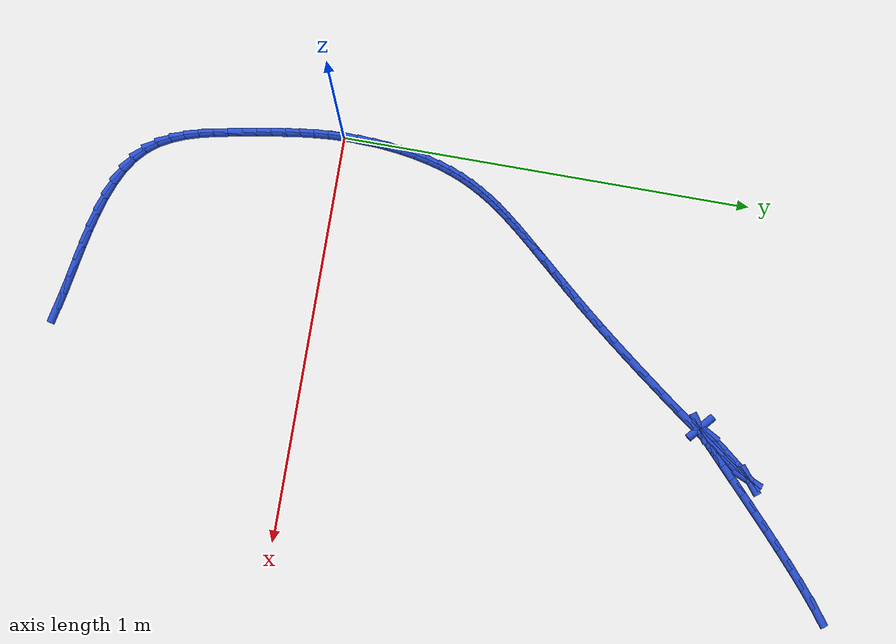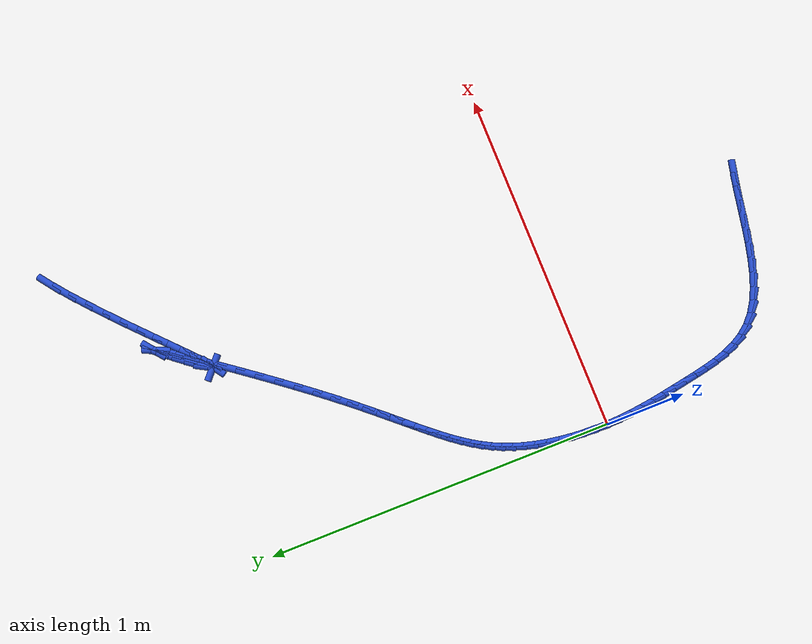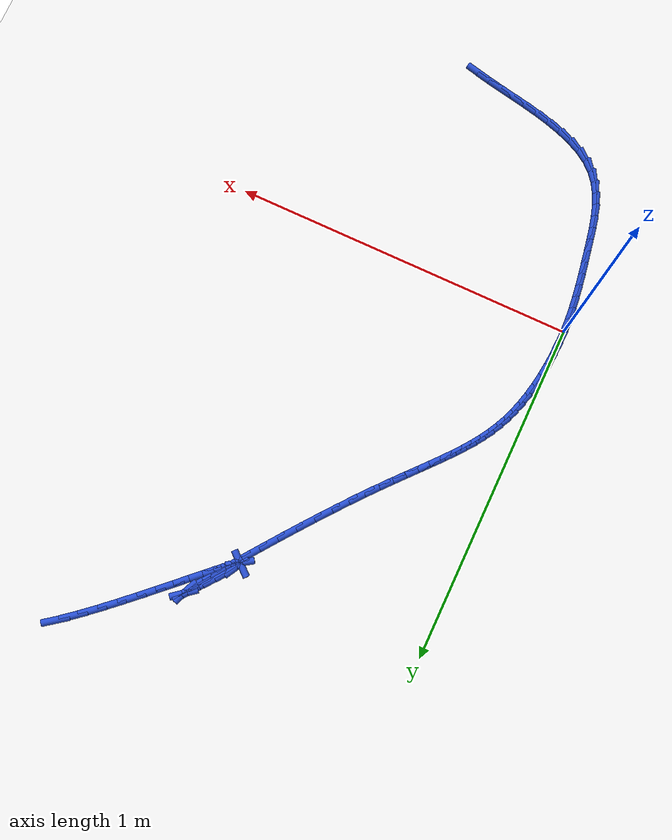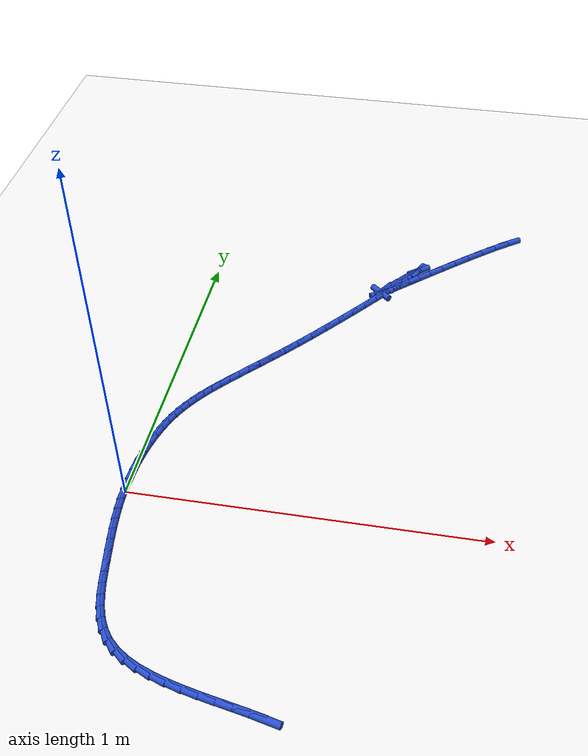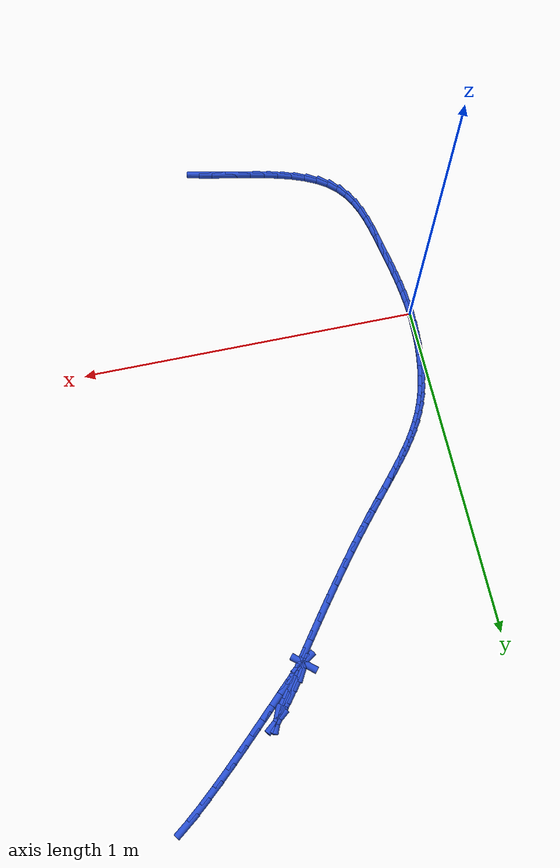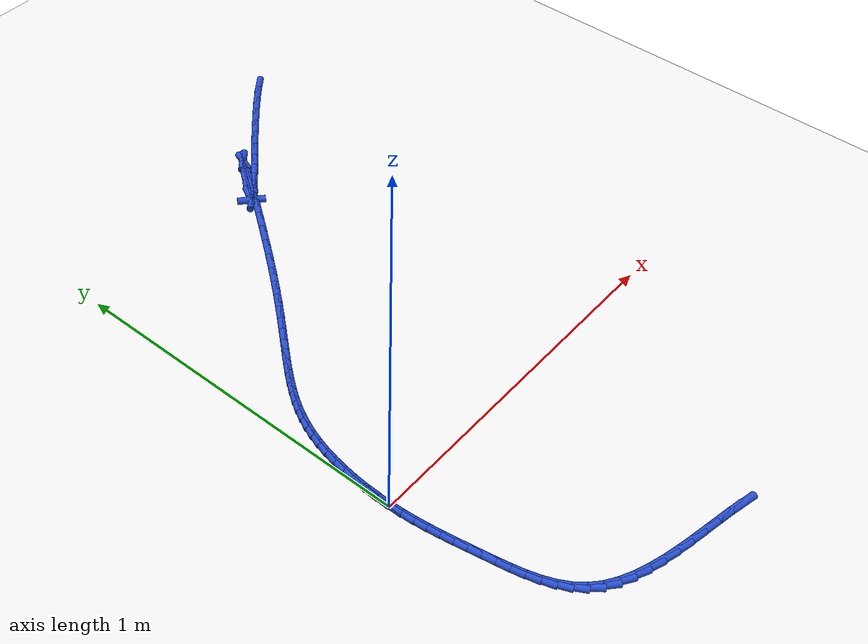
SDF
<sdf version="1.6">
 <world name="default">
  <model name="ground_plane">
   <static>1</static>
   <link name="link">
    <collision name="collision">
     <geometry><plane><normal>0 0 1</normal><size>100 100</size></plane></geometry>
     <surface><friction><ode><mu>100</mu><mu2>50</mu2></ode></friction></surface>
    </collision>
    <visual name="visual">
     <cast_shadows>0</cast_shadows>
     <geometry><plane><normal>0 0 1</normal><size>100 100</size></plane></geometry>
     <material>
      <script><uri>file://media/materials/scripts/gazebo.material</uri><name>Gazebo/WhiteGlow</name></script>
     </material>
    </visual>
   </link>
  </model>
  <model name="line">
   <link name="link_0">
    <pose>-3.469446951953614e-18 -2.0816681711721685e-17 0.01 0 1.57 -1.5707592864873938</pose>
    <collision name="collision">
     <geometry><cylinder><radius>0.01</radius><length>0.08</length></cylinder></geometry>
    </collision>
    <visual name="visual">
     <material>
      <script><name>Gazebo/Blue</name><uri>file://media/materials/scripts/gazebo.material</uri></script>
     </material>
     <geometry><cylinder><radius>0.01</radius><length>0.08</length></cylinder></geometry>
    </visual>
   </link>
   <link name="link_1">
    <pose>-1.321990990803127e-06 0.03569060516281446 0.01 0 1.57 1.5304173241686705</pose>
    <collision name="collision">
     <geometry><cylinder><radius>0.01</radius><length>0.08</length></cylinder></geometry>
    </collision>
    <visual name="visual">
     <material>
      <script><name>Gazebo/Blue</name><uri>file://media/materials/scripts/gazebo.material</uri></script>
     </material>
     <geometry><cylinder><radius>0.01</radius><length>0.08</length></cylinder></geometry>
    </visual>
   </link>
   <link name="link_2">
    <pose>0.0014527882783550929 0.07168257617487195 0.01 0 1.57 1.4906871543346432</pose>
    <collision name="collision">
     <geometry><cylinder><radius>0.01</radius><length>0.08</length></cylinder></geometry>
    </collision>
    <visual name="visual">
     <material>
      <script><name>Gazebo/Blue</name><uri>file://media/materials/scripts/gazebo.material</uri></script>
     </material>
     <geometry><cylinder><radius>0.01</radius><length>0.08</length></cylinder></geometry>
    </visual>
   </link>
   <link name="link_3">
    <pose>0.004335432446679731 0.1075895142138233 0.01 0 1.57 1.45047673911087</pose>
    <collision name="collision">
     <geometry><cylinder><radius>0.01</radius><length>0.08</length></cylinder></geometry>
    </collision>
    <visual name="visual">
     <material>
      <script><name>Gazebo/Blue</name><uri>file://media/materials/scripts/gazebo.material</uri></script>
     </material>
     <geometry><cylinder><radius>0.01</radius><length>0.08</length></cylinder></geometry>
    </visual>
   </link>
   <link name="link_4">
    <pose>0.008619712152625157 0.14302502045731946 0.01 0 1.57 1.4085735020318906</pose>
    <collision name="collision">
     <geometry><cylinder><radius>0.01</radius><length>0.08</length></cylinder></geometry>
    </collision>
    <visual name="visual">
     <material>
      <script><name>Gazebo/Blue</name><uri>file://media/materials/scripts/gazebo.material</uri></script>
     </material>
     <geometry><cylinder><radius>0.01</radius><length>0.08</length></cylinder></geometry>
    </visual>
   </link>
   <link name="link_5">
    <pose>0.014278729034833414 0.17760269608301127 0.01 0 1.57 1.3636078383511694</pose>
    <collision name="collision">
     <geometry><cylinder><radius>0.01</radius><length>0.08</length></cylinder></geometry>
    </collision>
    <visual name="visual">
     <material>
      <script><name>Gazebo/Blue</name><uri>file://media/materials/scripts/gazebo.material</uri></script>
     </material>
     <geometry><cylinder><radius>0.01</radius><length>0.08</length></cylinder></geometry>
    </visual>
   </link>
   <link name="link_6">
    <pose>0.02128558473194655 0.21093614226854962 0.01 0 1.57 1.3139166584926567</pose>
    <collision name="collision">
     <geometry><cylinder><radius>0.01</radius><length>0.08</length></cylinder></geometry>
    </collision>
    <visual name="visual">
     <material>
      <script><name>Gazebo/Blue</name><uri>file://media/materials/scripts/gazebo.material</uri></script>
     </material>
     <geometry><cylinder><radius>0.01</radius><length>0.08</length></cylinder></geometry>
    </visual>
   </link>
   <link name="link_7">
    <pose>0.029613380882606604 0.2426389601915854 0.01 0 1.57 1.2578349997189717</pose>
    <collision name="collision">
     <geometry><cylinder><radius>0.01</radius><length>0.08</length></cylinder></geometry>
    </collision>
    <visual name="visual">
     <material>
      <script><name>Gazebo/Blue</name><uri>file://media/materials/scripts/gazebo.material</uri></script>
     </material>
     <geometry><cylinder><radius>0.01</radius><length>0.08</length></cylinder></geometry>
    </visual>
   </link>
   <link name="link_8">
    <pose>0.03924030749667579 0.27238881024362055 0.01 0 1.57 1.1976031780181058</pose>
    <collision name="collision">
     <geometry><cylinder><radius>0.01</radius><length>0.08</length></cylinder></geometry>
    </collision>
    <visual name="visual">
     <material>
      <script><name>Gazebo/Blue</name><uri>file://media/materials/scripts/gazebo.material</uri></script>
     </material>
     <geometry><cylinder><radius>0.01</radius><length>0.08</length></cylinder></geometry>
    </visual>
   </link>
   <link name="link_9">
    <pose>0.05018192319062259 0.3003337987522592 0.01 0 1.57 1.1365635758216672</pose>
    <collision name="collision">
     <geometry><cylinder><radius>0.01</radius><length>0.08</length></cylinder></geometry>
    </collision>
    <visual name="visual">
     <material>
      <script><name>Gazebo/Blue</name><uri>file://media/materials/scripts/gazebo.material</uri></script>
     </material>
     <geometry><cylinder><radius>0.01</radius><length>0.08</length></cylinder></geometry>
    </visual>
   </link>
   <link name="link_10">
    <pose>0.06247044276273264 0.32683172231077307 0.01 0 1.57 1.077294029438978</pose>
    <collision name="collision">
     <geometry><cylinder><radius>0.01</radius><length>0.08</length></cylinder></geometry>
    </collision>
    <visual name="visual">
     <material>
      <script><name>Gazebo/Blue</name><uri>file://media/materials/scripts/gazebo.material</uri></script>
     </material>
     <geometry><cylinder><radius>0.01</radius><length>0.08</length></cylinder></geometry>
    </visual>
   </link>
   <link name="link_11">
    <pose>0.07613815761532017 0.35224134190627077 0.01 0 1.57 1.0223374243256331</pose>
    <collision name="collision">
     <geometry><cylinder><radius>0.01</radius><length>0.08</length></cylinder></geometry>
    </collision>
    <visual name="visual">
     <material>
      <script><name>Gazebo/Blue</name><uri>file://media/materials/scripts/gazebo.material</uri></script>
     </material>
     <geometry><cylinder><radius>0.01</radius><length>0.08</length></cylinder></geometry>
    </visual>
   </link>
   <link name="link_12">
    <pose>0.09121735915069937 0.37692141852586053 0.01 0 1.57 0.9738261884577403</pose>
    <collision name="collision">
     <geometry><cylinder><radius>0.01</radius><length>0.08</length></cylinder></geometry>
    </collision>
    <visual name="visual">
     <material>
      <script><name>Gazebo/Blue</name><uri>file://media/materials/scripts/gazebo.material</uri></script>
     </material>
     <geometry><cylinder><radius>0.01</radius><length>0.08</length></cylinder></geometry>
    </visual>
   </link>
   <link name="link_13">
    <pose>0.1077403387711844 0.4012307131566508 0.01 0 1.57 0.9332191299139411</pose>
    <collision name="collision">
     <geometry><cylinder><radius>0.01</radius><length>0.08</length></cylinder></geometry>
    </collision>
    <visual name="visual">
     <material>
      <script><name>Gazebo/Blue</name><uri>file://media/materials/scripts/gazebo.material</uri></script>
     </material>
     <geometry><cylinder><radius>0.01</radius><length>0.08</length></cylinder></geometry>
    </visual>
   </link>
   <link name="link_14">
    <pose>0.12573938787908945 0.42552798678575016 0.01 0 1.57 0.9012181013214329</pose>
    <collision name="collision">
     <geometry><cylinder><radius>0.01</radius><length>0.08</length></cylinder></geometry>
    </collision>
    <visual name="visual">
     <material>
      <script><name>Gazebo/Blue</name><uri>file://media/materials/scripts/gazebo.material</uri></script>
     </material>
     <geometry><cylinder><radius>0.01</radius><length>0.08</length></cylinder></geometry>
    </visual>
   </link>
   <link name="link_15">
    <pose>0.14524679787672864 0.45017200040026656 0.01 0 1.57 0.8778424733503216</pose>
    <collision name="collision">
     <geometry><cylinder><radius>0.01</radius><length>0.08</length></cylinder></geometry>
    </collision>
    <visual name="visual">
     <material>
      <script><name>Gazebo/Blue</name><uri>file://media/materials/scripts/gazebo.material</uri></script>
     </material>
     <geometry><cylinder><radius>0.01</radius><length>0.08</length></cylinder></geometry>
    </visual>
   </link>
   <link name="link_16">
    <pose>0.1662948601664163 0.4755215149873088 0.01 0 1.57 0.8625930361971438</pose>
    <collision name="collision">
     <geometry><cylinder><radius>0.01</radius><length>0.08</length></cylinder></geometry>
    </collision>
    <visual name="visual">
     <material>
      <script><name>Gazebo/Blue</name><uri>file://media/materials/scripts/gazebo.material</uri></script>
     </material>
     <geometry><cylinder><radius>0.01</radius><length>0.08</length></cylinder></geometry>
    </visual>
   </link>
   <link name="link_17">
    <pose>0.18891586615046652 0.5019352915339852 0.01 0 1.57 0.8546370481776571</pose>
    <collision name="collision">
     <geometry><cylinder><radius>0.01</radius><length>0.08</length></cylinder></geometry>
    </collision>
    <visual name="visual">
     <material>
      <script><name>Gazebo/Blue</name><uri>file://media/materials/scripts/gazebo.material</uri></script>
     </material>
     <geometry><cylinder><radius>0.01</radius><length>0.08</length></cylinder></geometry>
    </visual>
   </link>
   <link name="link_18">
    <pose>0.2131421072311935 0.529772091027404 0.01 0 1.57 0.8529709879256517</pose>
    <collision name="collision">
     <geometry><cylinder><radius>0.01</radius><length>0.08</length></cylinder></geometry>
    </collision>
    <visual name="visual">
     <material>
      <script><name>Gazebo/Blue</name><uri>file://media/materials/scripts/gazebo.material</uri></script>
     </material>
     <geometry><cylinder><radius>0.01</radius><length>0.08</length></cylinder></geometry>
    </visual>
   </link>
   <link name="link_19">
    <pose>0.23900587481091135 0.5593906744546736 0.01 0 1.57 0.8565436841870587</pose>
    <collision name="collision">
     <geometry><cylinder><radius>0.01</radius><length>0.08</length></cylinder></geometry>
    </collision>
    <visual name="visual">
     <material>
      <script><name>Gazebo/Blue</name><uri>file://media/materials/scripts/gazebo.material</uri></script>
     </material>
     <geometry><cylinder><radius>0.01</radius><length>0.08</length></cylinder></geometry>
    </visual>
   </link>
   <link name="link_20">
    <pose>0.26653946029193437 0.5911498028029026 0.01 0 1.57 0.8643393472643787</pose>
    <collision name="collision">
     <geometry><cylinder><radius>0.01</radius><length>0.08</length></cylinder></geometry>
    </collision>
    <visual name="visual">
     <material>
      <script><name>Gazebo/Blue</name><uri>file://media/materials/scripts/gazebo.material</uri></script>
     </material>
     <geometry><cylinder><radius>0.01</radius><length>0.08</length></cylinder></geometry>
    </visual>
   </link>
   <link name="link_21">
    <pose>0.2957751550765767 0.6254082370591991 0.01 0 1.57 0.87542749178564</pose>
    <collision name="collision">
     <geometry><cylinder><radius>0.01</radius><length>0.08</length></cylinder></geometry>
    </collision>
    <visual name="visual">
     <material>
      <script><name>Gazebo/Blue</name><uri>file://media/materials/scripts/gazebo.material</uri></script>
     </material>
     <geometry><cylinder><radius>0.01</radius><length>0.08</length></cylinder></geometry>
    </visual>
   </link>
   <link name="link_22">
    <pose>0.3267452505671524 0.6625247382106717 0.01 0 1.57 0.8888215452859668</pose>
    <collision name="collision">
     <geometry><cylinder><radius>0.01</radius><length>0.08</length></cylinder></geometry>
    </collision>
    <visual name="visual">
     <material>
      <script><name>Gazebo/Blue</name><uri>file://media/materials/scripts/gazebo.material</uri></script>
     </material>
     <geometry><cylinder><radius>0.01</radius><length>0.08</length></cylinder></geometry>
    </visual>
   </link>
   <link name="link_23">
    <pose>0.3594605537952452 0.7028178570839259 0.01 0 1.57 0.9013056689274274</pose>
    <collision name="collision">
     <geometry><cylinder><radius>0.01</radius><length>0.08</length></cylinder></geometry>
    </collision>
    <visual name="visual">
     <material>
      <script><name>Gazebo/Blue</name><uri>file://media/materials/scripts/gazebo.material</uri></script>
     </material>
     <geometry><cylinder><radius>0.01</radius><length>0.08</length></cylinder></geometry>
    </visual>
   </link>
   <link name="link_24">
    <pose>0.39354983607669625 0.7458911262422728 0.01 0 1.57 0.9113345819190084</pose>
    <collision name="collision">
     <geometry><cylinder><radius>0.01</radius><length>0.08</length></cylinder></geometry>
    </collision>
    <visual name="visual">
     <material>
      <script><name>Gazebo/Blue</name><uri>file://media/materials/scripts/gazebo.material</uri></script>
     </material>
     <geometry><cylinder><radius>0.01</radius><length>0.08</length></cylinder></geometry>
    </visual>
   </link>
   <link name="link_25">
    <pose>0.42831335326093006 0.7907332285148665 0.01 0 1.57 0.9197195872085189</pose>
    <collision name="collision">
     <geometry><cylinder><radius>0.01</radius><length>0.08</length></cylinder></geometry>
    </collision>
    <visual name="visual">
     <material>
      <script><name>Gazebo/Blue</name><uri>file://media/materials/scripts/gazebo.material</uri></script>
     </material>
     <geometry><cylinder><radius>0.01</radius><length>0.08</length></cylinder></geometry>
    </visual>
   </link>
   <link name="link_26">
    <pose>0.463040657372221 0.8363128134456101 0.01 0 1.57 0.9270641181634669</pose>
    <collision name="collision">
     <geometry><cylinder><radius>0.01</radius><length>0.08</length></cylinder></geometry>
    </collision>
    <visual name="visual">
     <material>
      <script><name>Gazebo/Blue</name><uri>file://media/materials/scripts/gazebo.material</uri></script>
     </material>
     <geometry><cylinder><radius>0.01</radius><length>0.08</length></cylinder></geometry>
    </visual>
   </link>
   <link name="link_27">
    <pose>0.49702130043484294 0.8815985305784064 0.01 0 1.57 0.9338323528605587</pose>
    <collision name="collision">
     <geometry><cylinder><radius>0.01</radius><length>0.08</length></cylinder></geometry>
    </collision>
    <visual name="visual">
     <material>
      <script><name>Gazebo/Blue</name><uri>file://media/materials/scripts/gazebo.material</uri></script>
     </material>
     <geometry><cylinder><radius>0.01</radius><length>0.08</length></cylinder></geometry>
    </visual>
   </link>
   <link name="link_28">
    <pose>0.5295448344730707 0.9255590294571586 0.01 0 1.57 0.9404521188077047</pose>
    <collision name="collision">
     <geometry><cylinder><radius>0.01</radius><length>0.08</length></cylinder></geometry>
    </collision>
    <visual name="visual">
     <material>
      <script><name>Gazebo/Blue</name><uri>file://media/materials/scripts/gazebo.material</uri></script>
     </material>
     <geometry><cylinder><radius>0.01</radius><length>0.08</length></cylinder></geometry>
    </visual>
   </link>
   <link name="link_29">
    <pose>0.5599008115111788 0.9671629596257708 0.01 0 1.57 0.9474207868611886</pose>
    <collision name="collision">
     <geometry><cylinder><radius>0.01</radius><length>0.08</length></cylinder></geometry>
    </collision>
    <visual name="visual">
     <material>
      <script><name>Gazebo/Blue</name><uri>file://media/materials/scripts/gazebo.material</uri></script>
     </material>
     <geometry><cylinder><radius>0.01</radius><length>0.08</length></cylinder></geometry>
    </visual>
   </link>
   <link name="link_30">
    <pose>0.5873787835734411 1.0053789706281449 0.01 0 1.57 0.9554820558111933</pose>
    <collision name="collision">
     <geometry><cylinder><radius>0.01</radius><length>0.08</length></cylinder></geometry>
    </collision>
    <visual name="visual">
     <material>
      <script><name>Gazebo/Blue</name><uri>file://media/materials/scripts/gazebo.material</uri></script>
     </material>
     <geometry><cylinder><radius>0.01</radius><length>0.08</length></cylinder></geometry>
    </visual>
   </link>
   <link name="link_31">
    <pose>0.6112683026841323 1.039175712008185 0.01 0 1.57 0.9660538715062068</pose>
    <collision name="collision">
     <geometry><cylinder><radius>0.01</radius><length>0.08</length></cylinder></geometry>
    </collision>
    <visual name="visual">
     <material>
      <script><name>Gazebo/Blue</name><uri>file://media/materials/scripts/gazebo.material</uri></script>
     </material>
     <geometry><cylinder><radius>0.01</radius><length>0.08</length></cylinder></geometry>
    </visual>
   </link>
   <link name="link_32">
    <pose>0.6308589208675263 1.0675218333097936 0.01 0 1.57 0.9826300769140391</pose>
    <collision name="collision">
     <geometry><cylinder><radius>0.01</radius><length>0.08</length></cylinder></geometry>
    </collision>
    <visual name="visual">
     <material>
      <script><name>Gazebo/Blue</name><uri>file://media/materials/scripts/gazebo.material</uri></script>
     </material>
     <geometry><cylinder><radius>0.01</radius><length>0.08</length></cylinder></geometry>
    </visual>
   </link>
   <link name="link_33">
    <pose>0.6454401901478979 1.089385984076874 0.01 0 1.57 1.0176167810779266</pose>
    <collision name="collision">
     <geometry><cylinder><radius>0.01</radius><length>0.08</length></cylinder></geometry>
    </collision>
    <visual name="visual">
     <material>
      <script><name>Gazebo/Blue</name><uri>file://media/materials/scripts/gazebo.material</uri></script>
     </material>
     <geometry><cylinder><radius>0.01</radius><length>0.08</length></cylinder></geometry>
    </visual>
   </link>
   <link name="link_34">
    <pose>0.6543016625495212 1.1037368138533301 0.01 0 1.57 1.1742462103656968</pose>
    <collision name="collision">
     <geometry><cylinder><radius>0.01</radius><length>0.08</length></cylinder></geometry>
    </collision>
    <visual name="visual">
     <material>
      <script><name>Gazebo/Blue</name><uri>file://media/materials/scripts/gazebo.material</uri></script>
     </material>
     <geometry><cylinder><radius>0.01</radius><length>0.08</length></cylinder></geometry>
    </visual>
   </link>
   <link name="link_35">
    <pose>0.6567328900966707 1.1095429721830643 0.01 0 1.57 0.6750375429932046</pose>
    <collision name="collision">
     <geometry><cylinder><radius>0.01</radius><length>0.08</length></cylinder></geometry>
    </collision>
    <visual name="visual">
     <material>
      <script><name>Gazebo/Blue</name><uri>file://media/materials/scripts/gazebo.material</uri></script>
     </material>
     <geometry><cylinder><radius>0.01</radius><length>0.08</length></cylinder></geometry>
    </visual>
   </link>
   <link name="link_36">
    <pose>0.6520234248136205 1.1057731086099796 0.01 0 1.57 0.852734047417088</pose>
    <collision name="collision">
     <geometry><cylinder><radius>0.01</radius><length>0.08</length></cylinder></geometry>
    </collision>
    <visual name="visual">
     <material>
      <script><name>Gazebo/Blue</name><uri>file://media/materials/scripts/gazebo.material</uri></script>
     </material>
     <geometry><cylinder><radius>0.01</radius><length>0.08</length></cylinder></geometry>
    </visual>
   </link>
   <link name="link_37">
    <pose>0.6394628187246454 1.0913958726779802 0.01 0 1.57 0.8881695675735664</pose>
    <collision name="collision">
     <geometry><cylinder><radius>0.01</radius><length>0.08</length></cylinder></geometry>
    </collision>
    <visual name="visual">
     <material>
      <script><name>Gazebo/Blue</name><uri>file://media/materials/scripts/gazebo.material</uri></script>
     </material>
     <geometry><cylinder><radius>0.01</radius><length>0.08</length></cylinder></geometry>
    </visual>
   </link>
   <link name="link_38">
    <pose>0.6192438460404104 1.0665267500156475 0.01 0 1.57 0.9051832364251783</pose>
    <collision name="collision">
     <geometry><cylinder><radius>0.01</radius><length>0.08</length></cylinder></geometry>
    </collision>
    <visual name="visual">
     <material>
      <script><name>Gazebo/Blue</name><uri>file://media/materials/scripts/gazebo.material</uri></script>
     </material>
     <geometry><cylinder><radius>0.01</radius><length>0.08</length></cylinder></geometry>
    </visual>
   </link>
   <link name="link_39">
    <pose>0.5954180213533699 1.0361807324615757 0.01 0 1.57 0.9224087407581062</pose>
    <collision name="collision">
     <geometry><cylinder><radius>0.01</radius><length>0.08</length></cylinder></geometry>
    </collision>
    <visual name="visual">
     <material>
      <script><name>Gazebo/Blue</name><uri>file://media/materials/scripts/gazebo.material</uri></script>
     </material>
     <geometry><cylinder><radius>0.01</radius><length>0.08</length></cylinder></geometry>
    </visual>
   </link>
   <link name="link_40">
    <pose>0.573067132796172 1.0066809671352936 0.01 0 1.57 0.9550504454815214</pose>
    <collision name="collision">
     <geometry><cylinder><radius>0.01</radius><length>0.08</length></cylinder></geometry>
    </collision>
    <visual name="visual">
     <material>
      <script><name>Gazebo/Blue</name><uri>file://media/materials/scripts/gazebo.material</uri></script>
     </material>
     <geometry><cylinder><radius>0.01</radius><length>0.08</length></cylinder></geometry>
    </visual>
   </link>
   <link name="link_41">
    <pose>0.5572335288671827 0.984301508377082 0.01 0 1.57 1.0654862560269127</pose>
    <collision name="collision">
     <geometry><cylinder><radius>0.01</radius><length>0.08</length></cylinder></geometry>
    </collision>
    <visual name="visual">
     <material>
      <script><name>Gazebo/Blue</name><uri>file://media/materials/scripts/gazebo.material</uri></script>
     </material>
     <geometry><cylinder><radius>0.01</radius><length>0.08</length></cylinder></geometry>
    </visual>
   </link>
   <link name="link_42">
    <pose>0.5507219267041502 0.9725310877537243 0.01 0 1.57 -0.7080051592350588</pose>
    <collision name="collision">
     <geometry><cylinder><radius>0.01</radius><length>0.08</length></cylinder></geometry>
    </collision>
    <visual name="visual">
     <material>
      <script><name>Gazebo/Blue</name><uri>file://media/materials/scripts/gazebo.material</uri></script>
     </material>
     <geometry><cylinder><radius>0.01</radius><length>0.08</length></cylinder></geometry>
    </visual>
   </link>
   <link name="link_43">
    <pose>0.5529411190385555 0.9706313126719084 0.01 0 1.57 0.5990892341146937</pose>
    <collision name="collision">
     <geometry><cylinder><radius>0.01</radius><length>0.08</length></cylinder></geometry>
    </collision>
    <visual name="visual">
     <material>
      <script><name>Gazebo/Blue</name><uri>file://media/materials/scripts/gazebo.material</uri></script>
     </material>
     <geometry><cylinder><radius>0.01</radius><length>0.08</length></cylinder></geometry>
    </visual>
   </link>
   <link name="link_44">
    <pose>0.5630160775906404 0.9775105003851202 0.01 0 1.57 0.7068423049731728</pose>
    <collision name="collision">
     <geometry><cylinder><radius>0.01</radius><length>0.08</length></cylinder></geometry>
    </collision>
    <visual name="visual">
     <material>
      <script><name>Gazebo/Blue</name><uri>file://media/materials/scripts/gazebo.material</uri></script>
     </material>
     <geometry><cylinder><radius>0.01</radius><length>0.08</length></cylinder></geometry>
    </visual>
   </link>
   <link name="link_45">
    <pose>0.5800717740806469 0.9920769681468455 0.01 0 1.57 0.7403207665954509</pose>
    <collision name="collision">
     <geometry><cylinder><radius>0.01</radius><length>0.08</length></cylinder></geometry>
    </collision>
    <visual name="visual">
     <material>
      <script><name>Gazebo/Blue</name><uri>file://media/materials/scripts/gazebo.material</uri></script>
     </material>
     <geometry><cylinder><radius>0.01</radius><length>0.08</length></cylinder></geometry>
    </visual>
   </link>
   <link name="link_46">
    <pose>0.6032331802288169 1.0132390332105705 0.01 0 1.57 0.7540577473674985</pose>
    <collision name="collision">
     <geometry><cylinder><radius>0.01</radius><length>0.08</length></cylinder></geometry>
    </collision>
    <visual name="visual">
     <material>
      <script><name>Gazebo/Blue</name><uri>file://media/materials/scripts/gazebo.material</uri></script>
     </material>
     <geometry><cylinder><radius>0.01</radius><length>0.08</length></cylinder></geometry>
    </visual>
   </link>
   <link name="link_47">
    <pose>0.6316252677553921 1.039905012829781 0.01 0 1.57 0.7592465976700655</pose>
    <collision name="collision">
     <geometry><cylinder><radius>0.01</radius><length>0.08</length></cylinder></geometry>
    </collision>
    <visual name="visual">
     <material>
      <script><name>Gazebo/Blue</name><uri>file://media/materials/scripts/gazebo.material</uri></script>
     </material>
     <geometry><cylinder><radius>0.01</radius><length>0.08</length></cylinder></geometry>
    </visual>
   </link>
   <link name="link_48">
    <pose>0.6643730083806143 1.0709832242579629 0.01 0 1.57 0.7594988247779761</pose>
    <collision name="collision">
     <geometry><cylinder><radius>0.01</radius><length>0.08</length></cylinder></geometry>
    </collision>
    <visual name="visual">
     <material>
      <script><name>Gazebo/Blue</name><uri>file://media/materials/scripts/gazebo.material</uri></script>
     </material>
     <geometry><cylinder><radius>0.01</radius><length>0.08</length></cylinder></geometry>
    </visual>
   </link>
   <link name="link_49">
    <pose>0.7006013738247251 1.105381984748602 0.01 0 1.57 0.756168633017891</pose>
    <collision name="collision">
     <geometry><cylinder><radius>0.01</radius><length>0.08</length></cylinder></geometry>
    </collision>
    <visual name="visual">
     <material>
      <script><name>Gazebo/Blue</name><uri>file://media/materials/scripts/gazebo.material</uri></script>
     </material>
     <geometry><cylinder><radius>0.01</radius><length>0.08</length></cylinder></geometry>
    </visual>
   </link>
   <link name="link_50">
    <pose>0.7394353358079666 1.142009611555184 0.01 0 1.57 0.7496704464202273</pose>
    <collision name="collision">
     <geometry><cylinder><radius>0.01</radius><length>0.08</length></cylinder></geometry>
    </collision>
    <visual name="visual">
     <material>
      <script><name>Gazebo/Blue</name><uri>file://media/materials/scripts/gazebo.material</uri></script>
     </material>
     <geometry><cylinder><radius>0.01</radius><length>0.08</length></cylinder></geometry>
    </visual>
   </link>
   <link name="link_51">
    <pose>0.7799998660505805 1.1797744219311954 0.01 0 1.57 0.7398693596176621</pose>
    <collision name="collision">
     <geometry><cylinder><radius>0.01</radius><length>0.08</length></cylinder></geometry>
    </collision>
    <visual name="visual">
     <material>
      <script><name>Gazebo/Blue</name><uri>file://media/materials/scripts/gazebo.material</uri></script>
     </material>
     <geometry><cylinder><radius>0.01</radius><length>0.08</length></cylinder></geometry>
    </visual>
   </link>
   <link name="link_52">
    <pose>0.8214199362728086 1.2175847331301215 0.01 0 1.57 0.7261511408955652</pose>
    <collision name="collision">
     <geometry><cylinder><radius>0.01</radius><length>0.08</length></cylinder></geometry>
    </collision>
    <visual name="visual">
     <material>
      <script><name>Gazebo/Blue</name><uri>file://media/materials/scripts/gazebo.material</uri></script>
     </material>
     <geometry><cylinder><radius>0.01</radius><length>0.08</length></cylinder></geometry>
    </visual>
   </link>
   <link name="link_53">
    <pose>0.8628205181948926 1.2543488624054484 0.01 0 1.57 0.7072980828887583</pose>
    <collision name="collision">
     <geometry><cylinder><radius>0.01</radius><length>0.08</length></cylinder></geometry>
    </collision>
    <visual name="visual">
     <material>
      <script><name>Gazebo/Blue</name><uri>file://media/materials/scripts/gazebo.material</uri></script>
     </material>
     <geometry><cylinder><radius>0.01</radius><length>0.08</length></cylinder></geometry>
    </visual>
   </link>
   <link name="link_54">
    <pose>0.9033265835370745 1.2889751270106624 0.01 0 1.57 0.6811182097032304</pose>
    <collision name="collision">
     <geometry><cylinder><radius>0.01</radius><length>0.08</length></cylinder></geometry>
    </collision>
    <visual name="visual">
     <material>
      <script><name>Gazebo/Blue</name><uri>file://media/materials/scripts/gazebo.material</uri></script>
     </material>
     <geometry><cylinder><radius>0.01</radius><length>0.08</length></cylinder></geometry>
    </visual>
   </link>
   <link name="link_55">
    <pose>0.942067848069886 1.320375405946647 0.01 0 1.57 0.6436211108280099</pose>
    <collision name="collision">
     <geometry><cylinder><radius>0.01</radius><length>0.08</length></cylinder></geometry>
    </collision>
    <visual name="visual">
     <material>
      <script><name>Gazebo/Blue</name><uri>file://media/materials/scripts/gazebo.material</uri></script>
     </material>
     <geometry><cylinder><radius>0.01</radius><length>0.08</length></cylinder></geometry>
    </visual>
   </link>
   <link name="link_225">
    <pose>0.5300807534518618 -0.6137618702197314 0.01 0 1.57 -0.227207820216683</pose>
    <collision name="collision">
     <geometry><cylinder><radius>0.01</radius><length>0.08</length></cylinder></geometry>
    </collision>
    <visual name="visual">
     <material>
      <script><name>Gazebo/Blue</name><uri>file://media/materials/scripts/gazebo.material</uri></script>
     </material>
     <geometry><cylinder><radius>0.01</radius><length>0.08</length></cylinder></geometry>
    </visual>
   </link>
   <link name="link_226">
    <pose>0.4931277346358325 -0.6052183314122999 0.01 0 1.57 -0.20174948058900072</pose>
    <collision name="collision">
     <geometry><cylinder><radius>0.01</radius><length>0.08</length></cylinder></geometry>
    </collision>
    <visual name="visual">
     <material>
      <script><name>Gazebo/Blue</name><uri>file://media/materials/scripts/gazebo.material</uri></script>
     </material>
     <geometry><cylinder><radius>0.01</radius><length>0.08</length></cylinder></geometry>
    </visual>
   </link>
   <link name="link_227">
    <pose>0.4534973966311653 -0.5971126570331585 0.01 0 1.57 -0.19297092241576955</pose>
    <collision name="collision">
     <geometry><cylinder><radius>0.01</radius><length>0.08</length></cylinder></geometry>
    </collision>
    <visual name="visual">
     <material>
      <script><name>Gazebo/Blue</name><uri>file://media/materials/scripts/gazebo.material</uri></script>
     </material>
     <geometry><cylinder><radius>0.01</radius><length>0.08</length></cylinder></geometry>
    </visual>
   </link>
   <link name="link_228">
    <pose>0.41202369954557483 -0.5890085964390055 0.01 0 1.57 -0.1983477533865477</pose>
    <collision name="collision">
     <geometry><cylinder><radius>0.01</radius><length>0.08</length></cylinder></geometry>
    </collision>
    <visual name="visual">
     <material>
      <script><name>Gazebo/Blue</name><uri>file://media/materials/scripts/gazebo.material</uri></script>
     </material>
     <geometry><cylinder><radius>0.01</radius><length>0.08</length></cylinder></geometry>
    </visual>
   </link>
   <link name="link_229">
    <pose>0.36954060348677575 -0.5804698989865387 0.01 0 1.57 -0.21710268631896443</pose>
    <collision name="collision">
     <geometry><cylinder><radius>0.01</radius><length>0.08</length></cylinder></geometry>
    </collision>
    <visual name="visual">
     <material>
      <script><name>Gazebo/Blue</name><uri>file://media/materials/scripts/gazebo.material</uri></script>
     </material>
     <geometry><cylinder><radius>0.01</radius><length>0.08</length></cylinder></geometry>
    </visual>
   </link>
   <link name="link_230">
    <pose>0.3268820685624829 -0.5710603140324567 0.01 0 1.57 -0.24982919773197532</pose>
    <collision name="collision">
     <geometry><cylinder><radius>0.01</radius><length>0.08</length></cylinder></geometry>
    </collision>
    <visual name="visual">
     <material>
      <script><name>Gazebo/Blue</name><uri>file://media/materials/scripts/gazebo.material</uri></script>
     </material>
     <geometry><cylinder><radius>0.01</radius><length>0.08</length></cylinder></geometry>
    </visual>
   </link>
   <link name="link_231">
    <pose>0.2848820548804108 -0.5603435909334572 0.01 0 1.57 -0.29841449099842204</pose>
    <collision name="collision">
     <geometry><cylinder><radius>0.01</radius><length>0.08</length></cylinder></geometry>
    </collision>
    <visual name="visual">
     <material>
      <script><name>Gazebo/Blue</name><uri>file://media/materials/scripts/gazebo.material</uri></script>
     </material>
     <geometry><cylinder><radius>0.01</radius><length>0.08</length></cylinder></geometry>
    </visual>
   </link>
   <link name="link_232">
    <pose>0.24437452254827421 -0.5478834790462386 0.01 0 1.57 -0.3661402389055424</pose>
    <collision name="collision">
     <geometry><cylinder><radius>0.01</radius><length>0.08</length></cylinder></geometry>
    </collision>
    <visual name="visual">
     <material>
      <script><name>Gazebo/Blue</name><uri>file://media/materials/scripts/gazebo.material</uri></script>
     </material>
     <geometry><cylinder><radius>0.01</radius><length>0.08</length></cylinder></geometry>
    </visual>
   </link>
   <link name="link_233">
    <pose>0.20619343167378776 -0.5332437277274986 0.01 0 1.57 -0.45781234978912105</pose>
    <collision name="collision">
     <geometry><cylinder><radius>0.01</radius><length>0.08</length></cylinder></geometry>
    </collision>
    <visual name="visual">
     <material>
      <script><name>Gazebo/Blue</name><uri>file://media/materials/scripts/gazebo.material</uri></script>
     </material>
     <geometry><cylinder><radius>0.01</radius><length>0.08</length></cylinder></geometry>
    </visual>
   </link>
   <link name="link_234">
    <pose>0.17117274236466615 -0.5159880863339359 0.01 0 1.57 -0.5795558710262172</pose>
    <collision name="collision">
     <geometry><cylinder><radius>0.01</radius><length>0.08</length></cylinder></geometry>
    </collision>
    <visual name="visual">
     <material>
      <script><name>Gazebo/Blue</name><uri>file://media/materials/scripts/gazebo.material</uri></script>
     </material>
     <geometry><cylinder><radius>0.01</radius><length>0.08</length></cylinder></geometry>
    </visual>
   </link>
   <link name="link_235">
    <pose>0.14014641472862402 -0.4956803042222483 0.01 0 1.57 -0.7368576392814595</pose>
    <collision name="collision">
     <geometry><cylinder><radius>0.01</radius><length>0.08</length></cylinder></geometry>
    </collision>
    <visual name="visual">
     <material>
      <script><name>Gazebo/Blue</name><uri>file://media/materials/scripts/gazebo.material</uri></script>
     </material>
     <geometry><cylinder><radius>0.01</radius><length>0.08</length></cylinder></geometry>
    </visual>
   </link>
   <link name="link_236">
    <pose>0.11393218869938507 -0.4718949900336374 0.01 0 1.57 -0.9090503509532954</pose>
    <collision name="collision">
     <geometry><cylinder><radius>0.01</radius><length>0.08</length></cylinder></geometry>
    </collision>
    <visual name="visual">
     <material>
      <script><name>Gazebo/Blue</name><uri>file://media/materials/scripts/gazebo.material</uri></script>
     </material>
     <geometry><cylinder><radius>0.01</radius><length>0.08</length></cylinder></geometry>
    </visual>
   </link>
   <link name="link_237">
    <pose>0.09270227157083961 -0.4446389316569575 0.01 0 1.57 -1.059419527818925</pose>
    <collision name="collision">
     <geometry><cylinder><radius>0.01</radius><length>0.08</length></cylinder></geometry>
    </collision>
    <visual name="visual">
     <material>
      <script><name>Gazebo/Blue</name><uri>file://media/materials/scripts/gazebo.material</uri></script>
     </material>
     <geometry><cylinder><radius>0.01</radius><length>0.08</length></cylinder></geometry>
    </visual>
   </link>
   <link name="link_238">
    <pose>0.07578153425708369 -0.41448620231495886 0.01 0 1.57 -1.1805090935983804</pose>
    <collision name="collision">
     <geometry><cylinder><radius>0.01</radius><length>0.08</length></cylinder></geometry>
    </collision>
    <visual name="visual">
     <material>
      <script><name>Gazebo/Blue</name><uri>file://media/materials/scripts/gazebo.material</uri></script>
     </material>
     <geometry><cylinder><radius>0.01</radius><length>0.08</length></cylinder></geometry>
    </visual>
   </link>
   <link name="link_239">
    <pose>0.062437328222189704 -0.38204938406960787 0.01 0 1.57 -1.2721513279290153</pose>
    <collision name="collision">
     <geometry><cylinder><radius>0.01</radius><length>0.08</length></cylinder></geometry>
    </collision>
    <visual name="visual">
     <material>
      <script><name>Gazebo/Blue</name><uri>file://media/materials/scripts/gazebo.material</uri></script>
     </material>
     <geometry><cylinder><radius>0.01</radius><length>0.08</length></cylinder></geometry>
    </visual>
   </link>
   <link name="link_240">
    <pose>0.051937004930230464 -0.34794105898287264 0.01 0 1.57 -1.3366243956735568</pose>
    <collision name="collision">
     <geometry><cylinder><radius>0.01</radius><length>0.08</length></cylinder></geometry>
    </collision>
    <visual name="visual">
     <material>
      <script><name>Gazebo/Blue</name><uri>file://media/materials/scripts/gazebo.material</uri></script>
     </material>
     <geometry><cylinder><radius>0.01</radius><length>0.08</length></cylinder></geometry>
    </visual>
   </link>
   <link name="link_241">
    <pose>0.043547915845277854 -0.31277380911671765 0.01 0 1.57 -1.376432312464862</pose>
    <collision name="collision">
     <geometry><cylinder><radius>0.01</radius><length>0.08</length></cylinder></geometry>
    </collision>
    <visual name="visual">
     <material>
      <script><name>Gazebo/Blue</name><uri>file://media/materials/scripts/gazebo.material</uri></script>
     </material>
     <geometry><cylinder><radius>0.01</radius><length>0.08</length></cylinder></geometry>
    </visual>
   </link>
   <link name="link_242">
    <pose>0.036537412431404716 -0.2771602165331109 0.01 0 1.57 -1.3931774519767808</pose>
    <collision name="collision">
     <geometry><cylinder><radius>0.01</radius><length>0.08</length></cylinder></geometry>
    </collision>
    <visual name="visual">
     <material>
      <script><name>Gazebo/Blue</name><uri>file://media/materials/scripts/gazebo.material</uri></script>
     </material>
     <geometry><cylinder><radius>0.01</radius><length>0.08</length></cylinder></geometry>
    </visual>
   </link>
   <link name="link_243">
    <pose>0.0301740503834321 -0.24171182860129434 0.01 0 1.57 -1.3953571851499569</pose>
    <collision name="collision">
     <geometry><cylinder><radius>0.01</radius><length>0.08</length></cylinder></geometry>
    </collision>
    <visual name="visual">
     <material>
      <script><name>Gazebo/Blue</name><uri>file://media/materials/scripts/gazebo.material</uri></script>
     </material>
     <geometry><cylinder><radius>0.01</radius><length>0.08</length></cylinder></geometry>
    </visual>
   </link>
   <link name="link_244">
    <pose>0.023988223927335444 -0.20681521718344356 0.01 0 1.57 -1.4015110659088177</pose>
    <collision name="collision">
     <geometry><cylinder><radius>0.01</radius><length>0.08</length></cylinder></geometry>
    </collision>
    <visual name="visual">
     <material>
      <script><name>Gazebo/Blue</name><uri>file://media/materials/scripts/gazebo.material</uri></script>
     </material>
     <geometry><cylinder><radius>0.01</radius><length>0.08</length></cylinder></geometry>
    </visual>
   </link>
   <link name="link_245">
    <pose>0.018097769307460265 -0.17235221534194103 0.01 0 1.57 -1.4143460236713303</pose>
    <collision name="collision">
     <geometry><cylinder><radius>0.01</radius><length>0.08</length></cylinder></geometry>
    </collision>
    <visual name="visual">
     <material>
      <script><name>Gazebo/Blue</name><uri>file://media/materials/scripts/gazebo.material</uri></script>
     </material>
     <geometry><cylinder><radius>0.01</radius><length>0.08</length></cylinder></geometry>
    </visual>
   </link>
   <link name="link_246">
    <pose>0.012700512988052083 -0.1381359273687967 0.01 0 1.57 -1.4338739701484582</pose>
    <collision name="collision">
     <geometry><cylinder><radius>0.01</radius><length>0.08</length></cylinder></geometry>
    </collision>
    <visual name="visual">
     <material>
      <script><name>Gazebo/Blue</name><uri>file://media/materials/scripts/gazebo.material</uri></script>
     </material>
     <geometry><cylinder><radius>0.01</radius><length>0.08</length></cylinder></geometry>
    </visual>
   </link>
   <link name="link_247">
    <pose>0.007994281433356435 -0.10397945755602045 0.01 0 1.57 -1.4599058062270296</pose>
    <collision name="collision">
     <geometry><cylinder><radius>0.01</radius><length>0.08</length></cylinder></geometry>
    </collision>
    <visual name="visual">
     <material>
      <script><name>Gazebo/Blue</name><uri>file://media/materials/scripts/gazebo.material</uri></script>
     </material>
     <geometry><cylinder><radius>0.01</radius><length>0.08</length></cylinder></geometry>
    </visual>
   </link>
   <link name="link_248">
    <pose>0.004176901107618846 -0.06969591019562224 0.01 0 1.57 -1.4920319151692414</pose>
    <collision name="collision">
     <geometry><cylinder><radius>0.01</radius><length>0.08</length></cylinder></geometry>
    </collision>
    <visual name="visual">
     <material>
      <script><name>Gazebo/Blue</name><uri>file://media/materials/scripts/gazebo.material</uri></script>
     </material>
     <geometry><cylinder><radius>0.01</radius><length>0.08</length></cylinder></geometry>
    </visual>
   </link>
   <link name="link_249">
    <pose>0.0014461984750848513 -0.03509838957961203 0.01 0 1.57 -1.5296154953431857</pose>
    <collision name="collision">
     <geometry><cylinder><radius>0.01</radius><length>0.08</length></cylinder></geometry>
    </collision>
    <visual name="visual">
     <material>
      <script><name>Gazebo/Blue</name><uri>file://media/materials/scripts/gazebo.material</uri></script>
     </material>
     <geometry><cylinder><radius>0.01</radius><length>0.08</length></cylinder></geometry>
    </visual>
   </link>
   <link name="link_250">
    <pose>-1.474514954580286e-17 2.42861286636753e-16 0.01 0 1.57 1.5697866588077165</pose>
    <collision name="collision">
     <geometry><cylinder><radius>0.01</radius><length>0.08</length></cylinder></geometry>
    </collision>
    <visual name="visual">
     <material>
      <script><name>Gazebo/Blue</name><uri>file://media/materials/scripts/gazebo.material</uri></script>
     </material>
     <geometry><cylinder><radius>0.01</radius><length>0.08</length></cylinder></geometry>
    </visual>
   </link>
   <link name="link_251">
    <pose>3.613214660977415e-05 0.03578615425120464 0.01 0 1.57 1.524015123349398</pose>
    <collision name="collision">
     <geometry><cylinder><radius>0.01</radius><length>0.08</length></cylinder></geometry>
    </collision>
    <visual name="visual">
     <material>
      <script><name>Gazebo/Blue</name><uri>file://media/materials/scripts/gazebo.material</uri></script>
     </material>
     <geometry><cylinder><radius>0.01</radius><length>0.08</length></cylinder></geometry>
    </visual>
   </link>
   <link name="link_252">
    <pose>0.0017524213791597553 0.07244696888199123 0.01 0 1.57 1.5466120201164986</pose>
    <collision name="collision">
     <geometry><cylinder><radius>0.01</radius><length>0.08</length></cylinder></geometry>
    </collision>
    <visual name="visual">
     <material>
      <script><name>Gazebo/Blue</name><uri>file://media/materials/scripts/gazebo.material</uri></script>
     </material>
     <geometry><cylinder><radius>0.01</radius><length>0.08</length></cylinder></geometry>
    </visual>
   </link>
  </model>
 </world>
</sdf>
